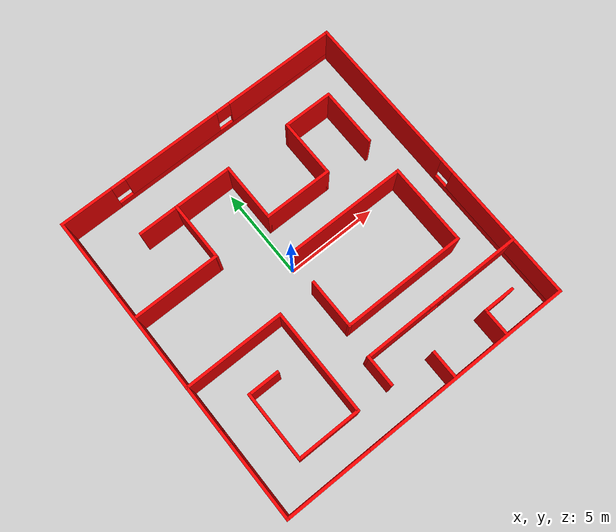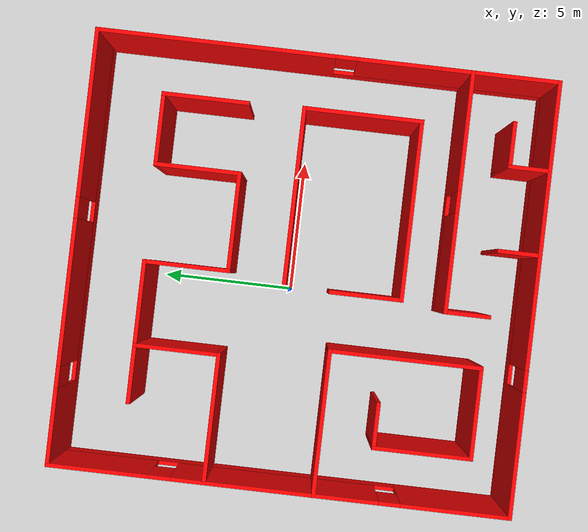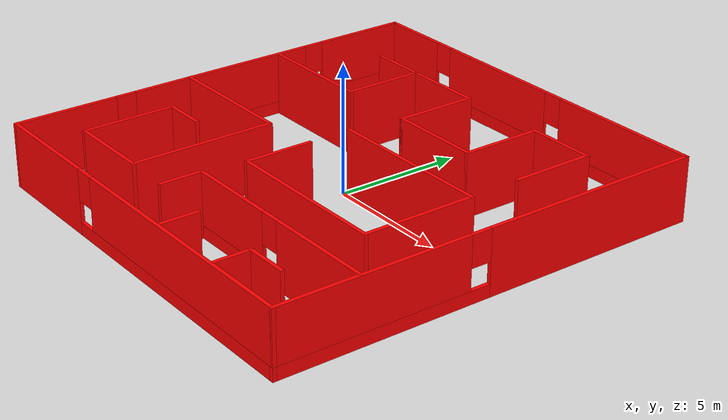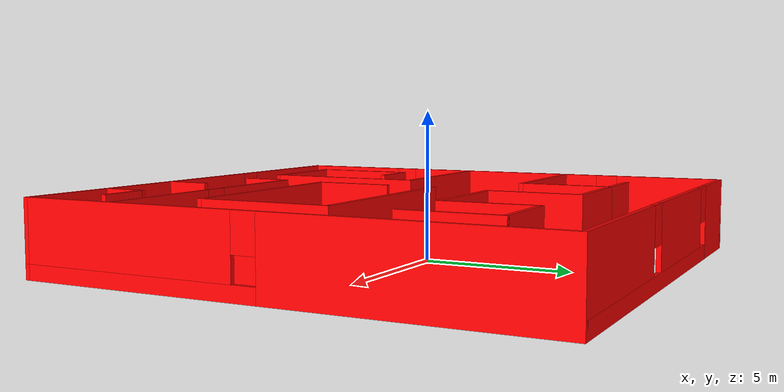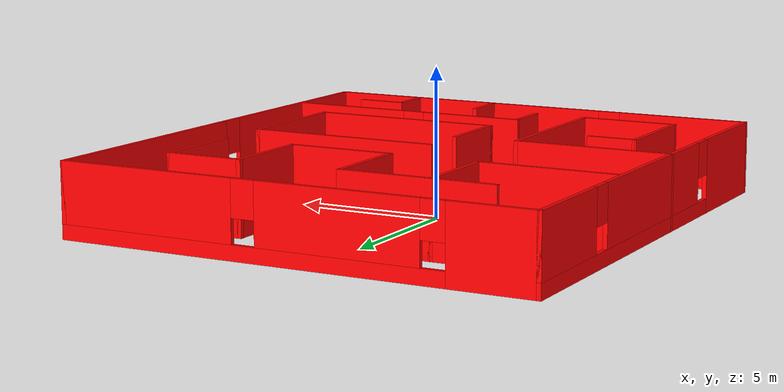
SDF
<?xml version='1.0'?>
<sdf version='1.6'>
  <model name='Building'>
    <pose frame=''>0.647341 -0.441173 0 0 -0 0</pose>
    <link name='Wall_10'>
      <pose frame=''>0.002796 -8.55 0 0 -0 0</pose>
      <visual name='Wall_10_Visual_0'>
        <pose frame=''>-5.76226 0 1.25 0 -0 0</pose>
        <geometry>
          <box>
            <size>4.72547 0.15 2.5</size>
          </box>
        </geometry>
        <material>
          <script>
            <uri>file://media/materials/scripts/gazebo.material</uri>
            <name>Gazebo/Grey</name>
          </script>
          <ambient>1 0 0 1</ambient>
        </material>
        <meta>
          <layer>0</layer>
        </meta>
      </visual>
      <collision name='Wall_10_Collision_0'>
        <geometry>
          <box>
            <size>4.72547 0.15 2.5</size>
          </box>
        </geometry>
        <pose frame=''>-5.76226 0 1.25 0 -0 0</pose>
      </collision>
      <visual name='Wall_10_Visual_1'>
        <pose frame=''>2.36274 0 0.25 0 -0 0</pose>
        <geometry>
          <box>
            <size>11.5245 0.15 0.5</size>
          </box>
        </geometry>
        <material>
          <script>
            <uri>file://media/materials/scripts/gazebo.material</uri>
            <name>Gazebo/Grey</name>
          </script>
          <ambient>1 0 0 1</ambient>
        </material>
        <meta>
          <layer>0</layer>
        </meta>
      </visual>
      <collision name='Wall_10_Collision_1'>
        <geometry>
          <box>
            <size>11.5245 0.15 0.5</size>
          </box>
        </geometry>
        <pose frame=''>2.36274 0 0.25 0 -0 0</pose>
      </collision>
      <visual name='Wall_10_Visual_2'>
        <pose frame=''>2.76274 0 1.5 0 -0 0</pose>
        <geometry>
          <box>
            <size>10.7245 0.15 2</size>
          </box>
        </geometry>
        <material>
          <script>
            <uri>file://media/materials/scripts/gazebo.material</uri>
            <name>Gazebo/Grey</name>
          </script>
          <ambient>1 0 0 1</ambient>
        </material>
        <meta>
          <layer>0</layer>
        </meta>
      </visual>
      <collision name='Wall_10_Collision_2'>
        <geometry>
          <box>
            <size>10.7245 0.15 2</size>
          </box>
        </geometry>
        <pose frame=''>2.76274 0 1.5 0 -0 0</pose>
      </collision>
      <visual name='Wall_10_Visual_3'>
        <pose frame=''>-2.99953 0 1.9 0 -0 0</pose>
        <geometry>
          <box>
            <size>0.8 0.15 1.2</size>
          </box>
        </geometry>
        <material>
          <script>
            <uri>file://media/materials/scripts/gazebo.material</uri>
            <name>Gazebo/Grey</name>
          </script>
          <ambient>1 0 0 1</ambient>
        </material>
        <meta>
          <layer>0</layer>
        </meta>
      </visual>
      <collision name='Wall_10_Collision_3'>
        <geometry>
          <box>
            <size>0.8 0.15 1.2</size>
          </box>
        </geometry>
        <pose frame=''>-2.99953 0 1.9 0 -0 0</pose>
      </collision>
    </link>
    <link name='Wall_13'>
      <collision name='Wall_13_Collision'>
        <geometry>
          <box>
            <size>5.5 0.15 2.5</size>
          </box>
        </geometry>
        <pose frame=''>0 0 1.25 0 -0 0</pose>
      </collision>
      <visual name='Wall_13_Visual'>
        <pose frame=''>0 0 1.25 0 -0 0</pose>
        <geometry>
          <box>
            <size>5.5 0.15 2.5</size>
          </box>
        </geometry>
        <material>
          <script>
            <uri>file://media/materials/scripts/gazebo.material</uri>
            <name>Gazebo/Grey</name>
          </script>
          <ambient>1 0 0 1</ambient>
        </material>
        <meta>
          <layer>0</layer>
        </meta>
      </visual>
      <pose frame=''>-5.3778 -1.28734 0 0 -0 0</pose>
    </link>
    <link name='Wall_14'>
      <collision name='Wall_14_Collision'>
        <geometry>
          <box>
            <size>5.75 0.15 2.5</size>
          </box>
        </geometry>
        <pose frame=''>0 0 1.25 0 -0 0</pose>
      </collision>
      <visual name='Wall_14_Visual'>
        <pose frame=''>0 0 1.25 0 -0 0</pose>
        <geometry>
          <box>
            <size>5.75 0.15 2.5</size>
          </box>
        </geometry>
        <material>
          <script>
            <uri>file://media/materials/scripts/gazebo.material</uri>
            <name>Gazebo/Grey</name>
          </script>
          <ambient>1 0 0 1</ambient>
        </material>
        <meta>
          <layer>0</layer>
        </meta>
      </visual>
      <pose frame=''>-2.7028 -4.08734 0 0 0 -1.5708</pose>
    </link>
    <link name='Wall_15'>
      <collision name='Wall_15_Collision'>
        <geometry>
          <box>
            <size>3.5 0.15 2.5</size>
          </box>
        </geometry>
        <pose frame=''>0 0 1.25 0 -0 0</pose>
      </collision>
      <visual name='Wall_15_Visual'>
        <pose frame=''>0 0 1.25 0 -0 0</pose>
        <geometry>
          <box>
            <size>3.5 0.15 2.5</size>
          </box>
        </geometry>
        <material>
          <script>
            <uri>file://media/materials/scripts/gazebo.material</uri>
            <name>Gazebo/Grey</name>
          </script>
          <ambient>1 0 0 1</ambient>
        </material>
        <meta>
          <layer>0</layer>
        </meta>
      </visual>
      <pose frame=''>-4.3778 -6.88734 0 0 -0 3.14159</pose>
    </link>
    <link name='Wall_16'>
      <collision name='Wall_16_Collision'>
        <geometry>
          <box>
            <size>3.75 0.15 2.5</size>
          </box>
        </geometry>
        <pose frame=''>0 0 1.25 0 -0 0</pose>
      </collision>
      <visual name='Wall_16_Visual'>
        <pose frame=''>0 0 1.25 0 -0 0</pose>
        <geometry>
          <box>
            <size>3.75 0.15 2.5</size>
          </box>
        </geometry>
        <material>
          <script>
            <uri>file://media/materials/scripts/gazebo.material</uri>
            <name>Gazebo/Grey</name>
          </script>
          <ambient>1 0 0 1</ambient>
        </material>
        <meta>
          <layer>0</layer>
        </meta>
      </visual>
      <pose frame=''>-6.0528 -5.08734 0 0 -0 1.5708</pose>
    </link>
    <link name='Wall_17'>
      <collision name='Wall_17_Collision'>
        <geometry>
          <box>
            <size>1.75 0.15 2.5</size>
          </box>
        </geometry>
        <pose frame=''>0 0 1.25 0 -0 0</pose>
      </collision>
      <visual name='Wall_17_Visual'>
        <pose frame=''>0 0 1.25 0 -0 0</pose>
        <geometry>
          <box>
            <size>1.75 0.15 2.5</size>
          </box>
        </geometry>
        <material>
          <script>
            <uri>file://media/materials/scripts/gazebo.material</uri>
            <name>Gazebo/Grey</name>
          </script>
          <ambient>1 0 0 1</ambient>
        </material>
        <meta>
          <layer>0</layer>
        </meta>
      </visual>
      <pose frame=''>-5.2528 -3.28734 0 0 -0 0</pose>
    </link>
    <link name='Wall_19'>
      <collision name='Wall_19_Collision'>
        <geometry>
          <box>
            <size>4.75 0.15 2.5</size>
          </box>
        </geometry>
        <pose frame=''>0 0 1.25 0 -0 0</pose>
      </collision>
      <visual name='Wall_19_Visual'>
        <pose frame=''>0 0 1.25 0 -0 0</pose>
        <geometry>
          <box>
            <size>4.75 0.15 2.5</size>
          </box>
        </geometry>
        <material>
          <script>
            <uri>file://media/materials/scripts/gazebo.material</uri>
            <name>Gazebo/Grey</name>
          </script>
          <ambient>1 0 0 1</ambient>
        </material>
        <meta>
          <layer>0</layer>
        </meta>
      </visual>
      <pose frame=''>-5.61322 2.76024 0 0 -0 0</pose>
    </link>
    <link name='Wall_20'>
      <collision name='Wall_20_Collision'>
        <geometry>
          <box>
            <size>3.25 0.15 2.5</size>
          </box>
        </geometry>
        <pose frame=''>0 0 1.25 0 -0 0</pose>
      </collision>
      <visual name='Wall_20_Visual'>
        <pose frame=''>0 0 1.25 0 -0 0</pose>
        <geometry>
          <box>
            <size>3.25 0.15 2.5</size>
          </box>
        </geometry>
        <material>
          <script>
            <uri>file://media/materials/scripts/gazebo.material</uri>
            <name>Gazebo/Grey</name>
          </script>
          <ambient>1 0 0 1</ambient>
        </material>
        <meta>
          <layer>0</layer>
        </meta>
      </visual>
      <pose frame=''>-3.31323 4.31024 0 0 -0 1.5708</pose>
    </link>
    <link name='Wall_21'>
      <collision name='Wall_21_Collision'>
        <geometry>
          <box>
            <size>3.25 0.15 2.5</size>
          </box>
        </geometry>
        <pose frame=''>0 0 1.25 0 -0 0</pose>
      </collision>
      <visual name='Wall_21_Visual'>
        <pose frame=''>0 0 1.25 0 -0 0</pose>
        <geometry>
          <box>
            <size>3.25 0.15 2.5</size>
          </box>
        </geometry>
        <material>
          <script>
            <uri>file://media/materials/scripts/gazebo.material</uri>
            <name>Gazebo/Grey</name>
          </script>
          <ambient>1 0 0 1</ambient>
        </material>
        <meta>
          <layer>0</layer>
        </meta>
      </visual>
      <pose frame=''>-1.76323 5.86024 0 0 -0 0</pose>
    </link>
    <link name='Wall_24'>
      <collision name='Wall_24_Collision'>
        <geometry>
          <box>
            <size>2.25 0.15 2.5</size>
          </box>
        </geometry>
        <pose frame=''>0 0 1.25 0 -0 0</pose>
      </collision>
      <visual name='Wall_24_Visual'>
        <pose frame=''>0 0 1.25 0 -0 0</pose>
        <geometry>
          <box>
            <size>2.25 0.15 2.5</size>
          </box>
        </geometry>
        <material>
          <script>
            <uri>file://media/materials/scripts/gazebo.material</uri>
            <name>Gazebo/Grey</name>
          </script>
          <ambient>1 0 0 1</ambient>
        </material>
        <meta>
          <layer>0</layer>
        </meta>
      </visual>
      <pose frame=''>-4.36322 5.86024 0 0 -0 3.14159</pose>
    </link>
    <link name='Wall_26'>
      <collision name='Wall_26_Collision'>
        <geometry>
          <box>
            <size>3.25 0.15 2.5</size>
          </box>
        </geometry>
        <pose frame=''>0 0 1.25 0 -0 0</pose>
      </collision>
      <visual name='Wall_26_Visual'>
        <pose frame=''>0 0 1.25 0 -0 0</pose>
        <geometry>
          <box>
            <size>3.25 0.15 2.5</size>
          </box>
        </geometry>
        <material>
          <script>
            <uri>file://media/materials/scripts/gazebo.material</uri>
            <name>Gazebo/Grey</name>
          </script>
          <ambient>1 0 0 1</ambient>
        </material>
        <meta>
          <layer>0</layer>
        </meta>
      </visual>
      <pose frame=''>-0.213225 4.31024 0 0 0 -1.5708</pose>
    </link>
    <link name='Wall_27'>
      <collision name='Wall_27_Collision'>
        <geometry>
          <box>
            <size>3.75 0.15 2.5</size>
          </box>
        </geometry>
        <pose frame=''>0 0 1.25 0 -0 0</pose>
      </collision>
      <visual name='Wall_27_Visual'>
        <pose frame=''>0 0 1.25 0 -0 0</pose>
        <geometry>
          <box>
            <size>3.75 0.15 2.5</size>
          </box>
        </geometry>
        <material>
          <script>
            <uri>file://media/materials/scripts/gazebo.material</uri>
            <name>Gazebo/Grey</name>
          </script>
          <ambient>1 0 0 1</ambient>
        </material>
        <meta>
          <layer>0</layer>
        </meta>
      </visual>
      <pose frame=''>1.58678 2.76024 0 0 -0 0</pose>
    </link>
    <link name='Wall_28'>
      <collision name='Wall_28_Collision'>
        <geometry>
          <box>
            <size>3.25 0.15 2.5</size>
          </box>
        </geometry>
        <pose frame=''>0 0 1.25 0 -0 0</pose>
      </collision>
      <visual name='Wall_28_Visual'>
        <pose frame=''>0 0 1.25 0 -0 0</pose>
        <geometry>
          <box>
            <size>3.25 0.15 2.5</size>
          </box>
        </geometry>
        <material>
          <script>
            <uri>file://media/materials/scripts/gazebo.material</uri>
            <name>Gazebo/Grey</name>
          </script>
          <ambient>1 0 0 1</ambient>
        </material>
        <meta>
          <layer>0</layer>
        </meta>
      </visual>
      <pose frame=''>3.38678 4.31024 0 0 -0 1.5708</pose>
    </link>
    <link name='Wall_29'>
      <collision name='Wall_29_Collision'>
        <geometry>
          <box>
            <size>2.75 0.15 2.5</size>
          </box>
        </geometry>
        <pose frame=''>0 0 1.25 0 -0 0</pose>
      </collision>
      <visual name='Wall_29_Visual'>
        <pose frame=''>0 0 1.25 0 -0 0</pose>
        <geometry>
          <box>
            <size>2.75 0.15 2.5</size>
          </box>
        </geometry>
        <material>
          <script>
            <uri>file://media/materials/scripts/gazebo.material</uri>
            <name>Gazebo/Grey</name>
          </script>
          <ambient>1 0 0 1</ambient>
        </material>
        <meta>
          <layer>0</layer>
        </meta>
      </visual>
      <pose frame=''>4.68677 5.86024 0 0 -0 0</pose>
    </link>
    <link name='Wall_30'>
      <collision name='Wall_30_Collision'>
        <geometry>
          <box>
            <size>3.25 0.15 2.5</size>
          </box>
        </geometry>
        <pose frame=''>0 0 1.25 0 -0 0</pose>
      </collision>
      <visual name='Wall_30_Visual'>
        <pose frame=''>0 0 1.25 0 -0 0</pose>
        <geometry>
          <box>
            <size>3.25 0.15 2.5</size>
          </box>
        </geometry>
        <material>
          <script>
            <uri>file://media/materials/scripts/gazebo.material</uri>
            <name>Gazebo/Grey</name>
          </script>
          <ambient>1 0 0 1</ambient>
        </material>
        <meta>
          <layer>0</layer>
        </meta>
      </visual>
      <pose frame=''>5.98677 4.31024 0 0 0 -1.5708</pose>
    </link>
    <link name='Wall_32'>
      <collision name='Wall_32_Collision'>
        <geometry>
          <box>
            <size>6.75 0.15 2.5</size>
          </box>
        </geometry>
        <pose frame=''>0 0 1.25 0 -0 0</pose>
      </collision>
      <visual name='Wall_32_Visual'>
        <pose frame=''>0 0 1.25 0 -0 0</pose>
        <geometry>
          <box>
            <size>6.75 0.15 2.5</size>
          </box>
        </geometry>
        <material>
          <script>
            <uri>file://media/materials/scripts/gazebo.material</uri>
            <name>Gazebo/Grey</name>
          </script>
          <ambient>1 0 0 1</ambient>
        </material>
        <meta>
          <layer>0</layer>
        </meta>
      </visual>
      <pose frame=''>2.74596 0.667311 0 0 -0 0</pose>
    </link>
    <link name='Wall_33'>
      <collision name='Wall_33_Collision'>
        <geometry>
          <box>
            <size>4.5 0.15 2.5</size>
          </box>
        </geometry>
        <pose frame=''>0 0 1.25 0 -0 0</pose>
      </collision>
      <visual name='Wall_33_Visual'>
        <pose frame=''>0 0 1.25 0 -0 0</pose>
        <geometry>
          <box>
            <size>4.5 0.15 2.5</size>
          </box>
        </geometry>
        <material>
          <script>
            <uri>file://media/materials/scripts/gazebo.material</uri>
            <name>Gazebo/Grey</name>
          </script>
          <ambient>1 0 0 1</ambient>
        </material>
        <meta>
          <layer>0</layer>
        </meta>
      </visual>
      <pose frame=''>6.04596 -1.50769 0 0 0 -1.5708</pose>
    </link>
    <link name='Wall_34'>
      <collision name='Wall_34_Collision'>
        <geometry>
          <box>
            <size>6.75 0.15 2.5</size>
          </box>
        </geometry>
        <pose frame=''>0 0 1.25 0 -0 0</pose>
      </collision>
      <visual name='Wall_34_Visual'>
        <pose frame=''>0 0 1.25 0 -0 0</pose>
        <geometry>
          <box>
            <size>6.75 0.15 2.5</size>
          </box>
        </geometry>
        <material>
          <script>
            <uri>file://media/materials/scripts/gazebo.material</uri>
            <name>Gazebo/Grey</name>
          </script>
          <ambient>1 0 0 1</ambient>
        </material>
        <meta>
          <layer>0</layer>
        </meta>
      </visual>
      <pose frame=''>2.74596 -3.68269 0 0 -0 3.14159</pose>
    </link>
    <link name='Wall_35'>
      <collision name='Wall_35_Collision'>
        <geometry>
          <box>
            <size>2.75 0.15 2.5</size>
          </box>
        </geometry>
        <pose frame=''>0 0 1.25 0 -0 0</pose>
      </collision>
      <visual name='Wall_35_Visual'>
        <pose frame=''>0 0 1.25 0 -0 0</pose>
        <geometry>
          <box>
            <size>2.75 0.15 2.5</size>
          </box>
        </geometry>
        <material>
          <script>
            <uri>file://media/materials/scripts/gazebo.material</uri>
            <name>Gazebo/Grey</name>
          </script>
          <ambient>1 0 0 1</ambient>
        </material>
        <meta>
          <layer>0</layer>
        </meta>
      </visual>
      <pose frame=''>-0.554043 -2.38269 0 0 -0 1.5708</pose>
    </link>
    <link name='Wall_40'>
      <pose frame=''>3.6255 -5.33977 0 0 -0 3.14159</pose>
      <visual name='Wall_40_Visual_0'>
        <pose frame=''>-2.27925 0 1.25 0 -0 0</pose>
        <geometry>
          <box>
            <size>4.4415 0.15 2.5</size>
          </box>
        </geometry>
        <material>
          <script>
            <uri>file://media/materials/scripts/gazebo.material</uri>
            <name>Gazebo/Grey</name>
          </script>
          <ambient>1 0 0 1</ambient>
        </material>
        <meta>
          <layer>0</layer>
        </meta>
      </visual>
      <collision name='Wall_40_Collision_0'>
        <geometry>
          <box>
            <size>4.4415 0.15 2.5</size>
          </box>
        </geometry>
        <pose frame=''>-2.27925 0 1.25 0 -0 0</pose>
      </collision>
      <visual name='Wall_40_Visual_1'>
        <pose frame=''>2.22075 0 0.25 0 -0 0</pose>
        <geometry>
          <box>
            <size>4.5585 0.15 0.5</size>
          </box>
        </geometry>
        <material>
          <script>
            <uri>file://media/materials/scripts/gazebo.material</uri>
            <name>Gazebo/Grey</name>
          </script>
          <ambient>1 0 0 1</ambient>
        </material>
        <meta>
          <layer>0</layer>
        </meta>
      </visual>
      <collision name='Wall_40_Collision_1'>
        <geometry>
          <box>
            <size>4.5585 0.15 0.5</size>
          </box>
        </geometry>
        <pose frame=''>2.22075 0 0.25 0 -0 0</pose>
      </collision>
      <visual name='Wall_40_Visual_2'>
        <pose frame=''>2.62075 0 1.5 0 -0 0</pose>
        <geometry>
          <box>
            <size>3.7585 0.15 2</size>
          </box>
        </geometry>
        <material>
          <script>
            <uri>file://media/materials/scripts/gazebo.material</uri>
            <name>Gazebo/Grey</name>
          </script>
          <ambient>1 0 0 1</ambient>
        </material>
        <meta>
          <layer>0</layer>
        </meta>
      </visual>
      <collision name='Wall_40_Collision_2'>
        <geometry>
          <box>
            <size>3.7585 0.15 2</size>
          </box>
        </geometry>
        <pose frame=''>2.62075 0 1.5 0 -0 0</pose>
      </collision>
      <visual name='Wall_40_Visual_3'>
        <pose frame=''>0.341502 0 1.9 0 -0 0</pose>
        <geometry>
          <box>
            <size>0.8 0.15 1.2</size>
          </box>
        </geometry>
        <material>
          <script>
            <uri>file://media/materials/scripts/gazebo.material</uri>
            <name>Gazebo/Grey</name>
          </script>
          <ambient>1 0 0 1</ambient>
        </material>
        <meta>
          <layer>0</layer>
        </meta>
      </visual>
      <collision name='Wall_40_Collision_3'>
        <geometry>
          <box>
            <size>0.8 0.15 1.2</size>
          </box>
        </geometry>
        <pose frame=''>0.341502 0 1.9 0 -0 0</pose>
      </collision>
    </link>
    <link name='Wall_42'>
      <collision name='Wall_42_Collision'>
        <geometry>
          <box>
            <size>1.75 0.15 2.5</size>
          </box>
        </geometry>
        <pose frame=''>0 0 1.25 0 -0 0</pose>
      </collision>
      <visual name='Wall_42_Visual'>
        <pose frame=''>0 0 1.25 0 -0 0</pose>
        <geometry>
          <box>
            <size>1.75 0.15 2.5</size>
          </box>
        </geometry>
        <material>
          <script>
            <uri>file://media/materials/scripts/gazebo.material</uri>
            <name>Gazebo/Grey</name>
          </script>
          <ambient>1 0 0 1</ambient>
        </material>
        <meta>
          <layer>0</layer>
        </meta>
      </visual>
      <pose frame=''>-0.799499 -6.13977 0 0 0 -1.5708</pose>
    </link>
    <link name='Wall_45'>
      <collision name='Wall_45_Collision'>
        <geometry>
          <box>
            <size>1.5 0.15 2.5</size>
          </box>
        </geometry>
        <pose frame=''>0 0 1.25 0 -0 0</pose>
      </collision>
      <visual name='Wall_45_Visual'>
        <pose frame=''>0 0 1.25 0 -0 0</pose>
        <geometry>
          <box>
            <size>1.5 0.15 2.5</size>
          </box>
        </geometry>
        <material>
          <script>
            <uri>file://media/materials/scripts/gazebo.material</uri>
            <name>Gazebo/Grey</name>
          </script>
          <ambient>1 0 0 1</ambient>
        </material>
        <meta>
          <layer>0</layer>
        </meta>
      </visual>
      <pose frame=''>1.65714 -7.72379 0 0 -0 1.5708</pose>
    </link>
    <link name='Wall_47'>
      <collision name='Wall_47_Collision'>
        <geometry>
          <box>
            <size>1.5 0.15 2.5</size>
          </box>
        </geometry>
        <pose frame=''>0 0 1.25 0 -0 0</pose>
      </collision>
      <visual name='Wall_47_Visual'>
        <pose frame=''>0 0 1.25 0 -0 0</pose>
        <geometry>
          <box>
            <size>1.5 0.15 2.5</size>
          </box>
        </geometry>
        <material>
          <script>
            <uri>file://media/materials/scripts/gazebo.material</uri>
            <name>Gazebo/Grey</name>
          </script>
          <ambient>1 0 0 1</ambient>
        </material>
        <meta>
          <layer>0</layer>
        </meta>
      </visual>
      <pose frame=''>4.77735 -7.75438 0 0 -0 1.5708</pose>
    </link>
    <link name='Wall_48'>
      <collision name='Wall_48_Collision'>
        <geometry>
          <box>
            <size>1.75 0.15 2.5</size>
          </box>
        </geometry>
        <pose frame=''>0 0 1.25 0 -0 0</pose>
      </collision>
      <visual name='Wall_48_Visual'>
        <pose frame=''>0 0 1.25 0 -0 0</pose>
        <geometry>
          <box>
            <size>1.75 0.15 2.5</size>
          </box>
        </geometry>
        <material>
          <script>
            <uri>file://media/materials/scripts/gazebo.material</uri>
            <name>Gazebo/Grey</name>
          </script>
          <ambient>1 0 0 1</ambient>
        </material>
        <meta>
          <layer>0</layer>
        </meta>
      </visual>
      <pose frame=''>5.57735 -7.07938 0 0 -0 0</pose>
    </link>
    <link name='Wall_5'>
      <pose frame=''>-8.0472 0 0 0 -0 1.5708</pose>
      <visual name='Wall_5_Visual_0'>
        <pose frame=''>-6.56208 0 1.25 0 -0 0</pose>
        <geometry>
          <box>
            <size>4.12585 0.15 2.5</size>
          </box>
        </geometry>
        <material>
          <script>
            <uri>file://media/materials/scripts/gazebo.material</uri>
            <name>Gazebo/Grey</name>
          </script>
          <ambient>1 0 0 1</ambient>
        </material>
        <meta>
          <layer>0</layer>
        </meta>
      </visual>
      <collision name='Wall_5_Collision_0'>
        <geometry>
          <box>
            <size>4.12585 0.15 2.5</size>
          </box>
        </geometry>
        <pose frame=''>-6.56208 0 1.25 0 -0 0</pose>
      </collision>
      <visual name='Wall_5_Visual_1'>
        <pose frame=''>2.06292 0 0.25 0 -0 0</pose>
        <geometry>
          <box>
            <size>13.1242 0.15 0.5</size>
          </box>
        </geometry>
        <material>
          <script>
            <uri>file://media/materials/scripts/gazebo.material</uri>
            <name>Gazebo/Grey</name>
          </script>
          <ambient>1 0 0 1</ambient>
        </material>
        <meta>
          <layer>0</layer>
        </meta>
      </visual>
      <collision name='Wall_5_Collision_1'>
        <geometry>
          <box>
            <size>13.1242 0.15 0.5</size>
          </box>
        </geometry>
        <pose frame=''>2.06292 0 0.25 0 -0 0</pose>
      </collision>
      <visual name='Wall_5_Visual_2'>
        <pose frame=''>0.157784 0 1.5 0 -0 0</pose>
        <geometry>
          <box>
            <size>7.71388 0.15 2</size>
          </box>
        </geometry>
        <material>
          <script>
            <uri>file://media/materials/scripts/gazebo.material</uri>
            <name>Gazebo/Grey</name>
          </script>
          <ambient>1 0 0 1</ambient>
        </material>
        <meta>
          <layer>0</layer>
        </meta>
      </visual>
      <collision name='Wall_5_Collision_2'>
        <geometry>
          <box>
            <size>7.71388 0.15 2</size>
          </box>
        </geometry>
        <pose frame=''>0.157784 0 1.5 0 -0 0</pose>
      </collision>
      <visual name='Wall_5_Visual_3'>
        <pose frame=''>6.71986 0 1.5 0 -0 0</pose>
        <geometry>
          <box>
            <size>3.81028 0.15 2</size>
          </box>
        </geometry>
        <material>
          <script>
            <uri>file://media/materials/scripts/gazebo.material</uri>
            <name>Gazebo/Grey</name>
          </script>
          <ambient>1 0 0 1</ambient>
        </material>
        <meta>
          <layer>0</layer>
        </meta>
      </visual>
      <collision name='Wall_5_Collision_3'>
        <geometry>
          <box>
            <size>3.81028 0.15 2</size>
          </box>
        </geometry>
        <pose frame=''>6.71986 0 1.5 0 -0 0</pose>
      </collision>
      <visual name='Wall_5_Visual_4'>
        <pose frame=''>-4.09915 0 1.9 0 -0 0</pose>
        <geometry>
          <box>
            <size>0.8 0.15 1.2</size>
          </box>
        </geometry>
        <material>
          <script>
            <uri>file://media/materials/scripts/gazebo.material</uri>
            <name>Gazebo/Grey</name>
          </script>
          <ambient>1 0 0 1</ambient>
        </material>
        <meta>
          <layer>0</layer>
        </meta>
      </visual>
      <collision name='Wall_5_Collision_4'>
        <geometry>
          <box>
            <size>0.8 0.15 1.2</size>
          </box>
        </geometry>
        <pose frame=''>-4.09915 0 1.9 0 -0 0</pose>
      </collision>
      <visual name='Wall_5_Visual_5'>
        <pose frame=''>4.41472 0 1.9 0 -0 0</pose>
        <geometry>
          <box>
            <size>0.8 0.15 1.2</size>
          </box>
        </geometry>
        <material>
          <script>
            <uri>file://media/materials/scripts/gazebo.material</uri>
            <name>Gazebo/Grey</name>
          </script>
          <ambient>1 0 0 1</ambient>
        </material>
        <meta>
          <layer>0</layer>
        </meta>
      </visual>
      <collision name='Wall_5_Collision_5'>
        <geometry>
          <box>
            <size>0.8 0.15 1.2</size>
          </box>
        </geometry>
        <pose frame=''>4.41472 0 1.9 0 -0 0</pose>
      </collision>
    </link>
    <link name='Wall_7'>
      <pose frame=''>0.002796 8.55 0 0 -0 0</pose>
      <visual name='Wall_7_Visual_0'>
        <pose frame=''>-6.66948 0 1.25 0 -0 0</pose>
        <geometry>
          <box>
            <size>2.91104 0.15 2.5</size>
          </box>
        </geometry>
        <material>
          <script>
            <uri>file://media/materials/scripts/gazebo.material</uri>
            <name>Gazebo/Grey</name>
          </script>
          <ambient>1 0 0 1</ambient>
        </material>
        <meta>
          <layer>0</layer>
        </meta>
      </visual>
      <collision name='Wall_7_Collision_0'>
        <geometry>
          <box>
            <size>2.91104 0.15 2.5</size>
          </box>
        </geometry>
        <pose frame=''>-6.66948 0 1.25 0 -0 0</pose>
      </collision>
      <visual name='Wall_7_Visual_1'>
        <pose frame=''>1.45552 0 0.25 0 -0 0</pose>
        <geometry>
          <box>
            <size>13.339 0.15 0.5</size>
          </box>
        </geometry>
        <material>
          <script>
            <uri>file://media/materials/scripts/gazebo.material</uri>
            <name>Gazebo/Grey</name>
          </script>
          <ambient>1 0 0 1</ambient>
        </material>
        <meta>
          <layer>0</layer>
        </meta>
      </visual>
      <collision name='Wall_7_Collision_1'>
        <geometry>
          <box>
            <size>13.339 0.15 0.5</size>
          </box>
        </geometry>
        <pose frame=''>1.45552 0 0.25 0 -0 0</pose>
      </collision>
      <visual name='Wall_7_Visual_2'>
        <pose frame=''>-1.67359 0 1.5 0 -0 0</pose>
        <geometry>
          <box>
            <size>5.48073 0.15 2</size>
          </box>
        </geometry>
        <material>
          <script>
            <uri>file://media/materials/scripts/gazebo.material</uri>
            <name>Gazebo/Grey</name>
          </script>
          <ambient>1 0 0 1</ambient>
        </material>
        <meta>
          <layer>0</layer>
        </meta>
      </visual>
      <collision name='Wall_7_Collision_2'>
        <geometry>
          <box>
            <size>5.48073 0.15 2</size>
          </box>
        </geometry>
        <pose frame=''>-1.67359 0 1.5 0 -0 0</pose>
      </collision>
      <visual name='Wall_7_Visual_3'>
        <pose frame=''>4.99589 0 1.5 0 -0 0</pose>
        <geometry>
          <box>
            <size>6.25823 0.15 2</size>
          </box>
        </geometry>
        <material>
          <script>
            <uri>file://media/materials/scripts/gazebo.material</uri>
            <name>Gazebo/Grey</name>
          </script>
          <ambient>1 0 0 1</ambient>
        </material>
        <meta>
          <layer>0</layer>
        </meta>
      </visual>
      <collision name='Wall_7_Collision_3'>
        <geometry>
          <box>
            <size>6.25823 0.15 2</size>
          </box>
        </geometry>
        <pose frame=''>4.99589 0 1.5 0 -0 0</pose>
      </collision>
      <visual name='Wall_7_Visual_4'>
        <pose frame=''>-4.81396 0 1.9 0 -0 0</pose>
        <geometry>
          <box>
            <size>0.8 0.15 1.2</size>
          </box>
        </geometry>
        <material>
          <script>
            <uri>file://media/materials/scripts/gazebo.material</uri>
            <name>Gazebo/Grey</name>
          </script>
          <ambient>1 0 0 1</ambient>
        </material>
        <meta>
          <layer>0</layer>
        </meta>
      </visual>
      <collision name='Wall_7_Collision_4'>
        <geometry>
          <box>
            <size>0.8 0.15 1.2</size>
          </box>
        </geometry>
        <pose frame=''>-4.81396 0 1.9 0 -0 0</pose>
      </collision>
      <visual name='Wall_7_Visual_5'>
        <pose frame=''>1.46677 0 1.9 0 -0 0</pose>
        <geometry>
          <box>
            <size>0.8 0.15 1.2</size>
          </box>
        </geometry>
        <material>
          <script>
            <uri>file://media/materials/scripts/gazebo.material</uri>
            <name>Gazebo/Grey</name>
          </script>
          <ambient>1 0 0 1</ambient>
        </material>
        <meta>
          <layer>0</layer>
        </meta>
      </visual>
      <collision name='Wall_7_Collision_5'>
        <geometry>
          <box>
            <size>0.8 0.15 1.2</size>
          </box>
        </geometry>
        <pose frame=''>1.46677 0 1.9 0 -0 0</pose>
      </collision>
    </link>
    <link name='Wall_8'>
      <pose frame=''>8.0528 0 0 0 0 -1.5708</pose>
      <visual name='Wall_8_Visual_0'>
        <pose frame=''>-4.18431 0 1.25 0 -0 0</pose>
        <geometry>
          <box>
            <size>8.88138 0.15 2.5</size>
          </box>
        </geometry>
        <material>
          <script>
            <uri>file://media/materials/scripts/gazebo.material</uri>
            <name>Gazebo/Grey</name>
          </script>
          <ambient>1 0 0 1</ambient>
        </material>
        <meta>
          <layer>0</layer>
        </meta>
      </visual>
      <collision name='Wall_8_Collision_0'>
        <geometry>
          <box>
            <size>8.88138 0.15 2.5</size>
          </box>
        </geometry>
        <pose frame=''>-4.18431 0 1.25 0 -0 0</pose>
      </collision>
      <visual name='Wall_8_Visual_1'>
        <pose frame=''>4.44069 0 0.25 0 -0 0</pose>
        <geometry>
          <box>
            <size>8.36862 0.15 0.5</size>
          </box>
        </geometry>
        <material>
          <script>
            <uri>file://media/materials/scripts/gazebo.material</uri>
            <name>Gazebo/Grey</name>
          </script>
          <ambient>1 0 0 1</ambient>
        </material>
        <meta>
          <layer>0</layer>
        </meta>
      </visual>
      <collision name='Wall_8_Collision_1'>
        <geometry>
          <box>
            <size>8.36862 0.15 0.5</size>
          </box>
        </geometry>
        <pose frame=''>4.44069 0 0.25 0 -0 0</pose>
      </collision>
      <visual name='Wall_8_Visual_2'>
        <pose frame=''>4.84069 0 1.5 0 -0 0</pose>
        <geometry>
          <box>
            <size>7.56862 0.15 2</size>
          </box>
        </geometry>
        <material>
          <script>
            <uri>file://media/materials/scripts/gazebo.material</uri>
            <name>Gazebo/Grey</name>
          </script>
          <ambient>1 0 0 1</ambient>
        </material>
        <meta>
          <layer>0</layer>
        </meta>
      </visual>
      <collision name='Wall_8_Collision_2'>
        <geometry>
          <box>
            <size>7.56862 0.15 2</size>
          </box>
        </geometry>
        <pose frame=''>4.84069 0 1.5 0 -0 0</pose>
      </collision>
      <visual name='Wall_8_Visual_3'>
        <pose frame=''>0.656384 0 1.9 0 -0 0</pose>
        <geometry>
          <box>
            <size>0.8 0.15 1.2</size>
          </box>
        </geometry>
        <material>
          <script>
            <uri>file://media/materials/scripts/gazebo.material</uri>
            <name>Gazebo/Grey</name>
          </script>
          <ambient>1 0 0 1</ambient>
        </material>
        <meta>
          <layer>0</layer>
        </meta>
      </visual>
      <collision name='Wall_8_Collision_3'>
        <geometry>
          <box>
            <size>0.8 0.15 1.2</size>
          </box>
        </geometry>
        <pose frame=''>0.656384 0 1.9 0 -0 0</pose>
      </collision>
    </link>
    <static>1</static>
  </model>
</sdf>
